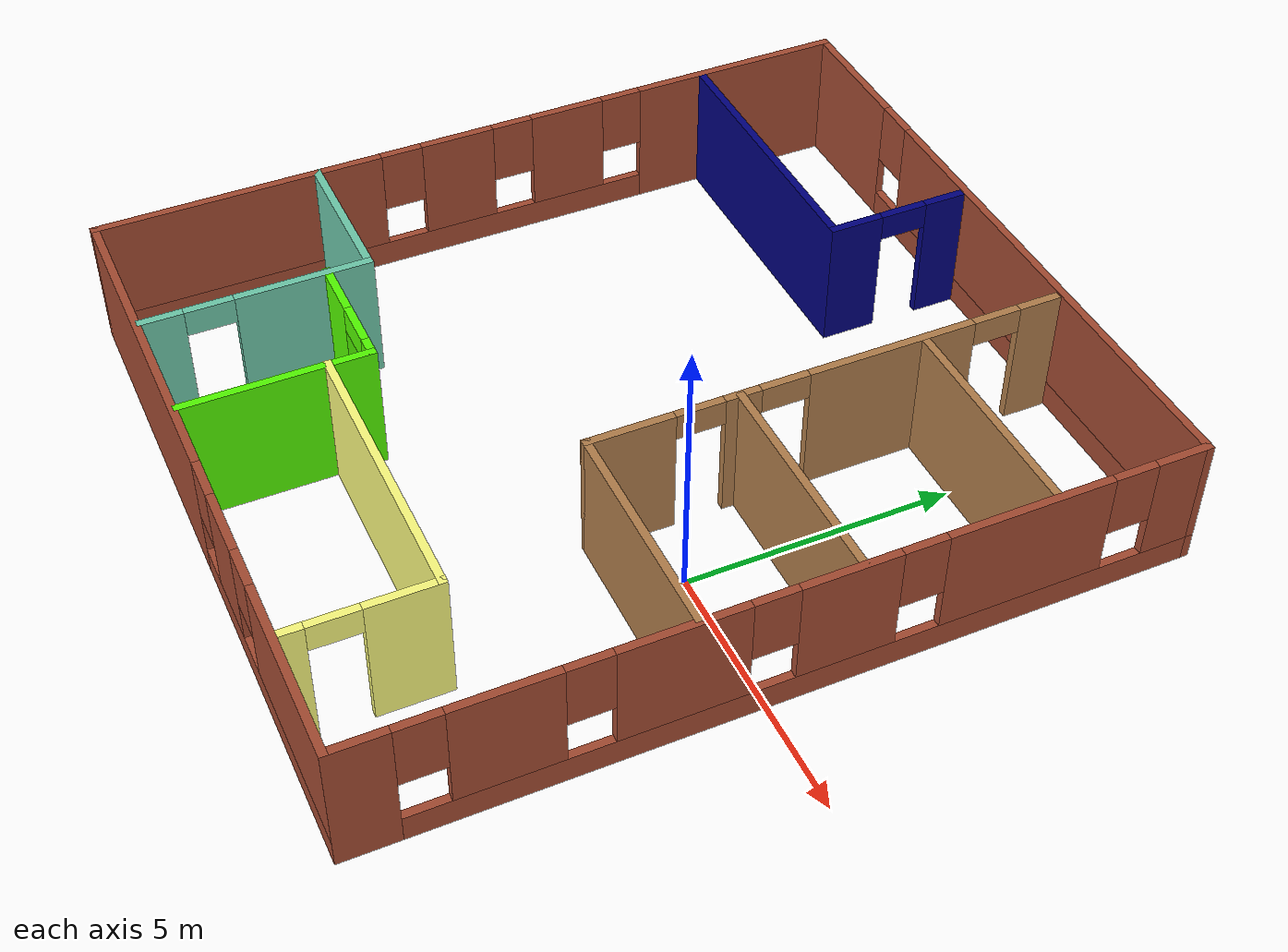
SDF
<?xml version='1.0'?>
<sdf version='1.6'>
  <model name='Building'>
    <pose frame=''>-3.58971 0.432221 0 0 -0 0</pose>
    <link name='Wall_41'>
      <pose frame=''>-6.425 0 0 0 0 -1.5708</pose>
      <visual name='Wall_41_Visual_0'>
        <pose frame=''>-5.408 0 1.25 0 -0 0</pose>
        <geometry>
          <box>
            <size>4.184 0.15 2.5</size>
          </box>
        </geometry>
        <material>
          <script>
            <uri>file://media/materials/scripts/gazebo.material</uri>
            <name>Gazebo/Bricks</name>
          </script>
          <ambient>1 1 1 1</ambient>
        </material>
        <meta>
          <layer>0</layer>
        </meta>
      </visual>
      <collision name='Wall_41_Collision_0'>
        <geometry>
          <box>
            <size>4.184 0.15 2.5</size>
          </box>
        </geometry>
        <pose frame=''>-5.408 0 1.25 0 -0 0</pose>
      </collision>
      <visual name='Wall_41_Visual_1'>
        <pose frame=''>2.092 0 0.25 0 -0 0</pose>
        <geometry>
          <box>
            <size>10.816 0.15 0.5</size>
          </box>
        </geometry>
        <material>
          <script>
            <uri>file://media/materials/scripts/gazebo.material</uri>
            <name>Gazebo/Bricks</name>
          </script>
          <ambient>1 1 1 1</ambient>
        </material>
        <meta>
          <layer>0</layer>
        </meta>
      </visual>
      <collision name='Wall_41_Collision_1'>
        <geometry>
          <box>
            <size>10.816 0.15 0.5</size>
          </box>
        </geometry>
        <pose frame=''>2.092 0 0.25 0 -0 0</pose>
      </collision>
      <visual name='Wall_41_Visual_2'>
        <pose frame=''>-1.77682 0 1.5 0 -0 0</pose>
        <geometry>
          <box>
            <size>1.47838 0.15 2</size>
          </box>
        </geometry>
        <material>
          <script>
            <uri>file://media/materials/scripts/gazebo.material</uri>
            <name>Gazebo/Bricks</name>
          </script>
          <ambient>1 1 1 1</ambient>
        </material>
        <meta>
          <layer>0</layer>
        </meta>
      </visual>
      <collision name='Wall_41_Collision_2'>
        <geometry>
          <box>
            <size>1.47838 0.15 2</size>
          </box>
        </geometry>
        <pose frame=''>-1.77682 0 1.5 0 -0 0</pose>
      </collision>
      <visual name='Wall_41_Visual_3'>
        <pose frame=''>0.481218 0 1.5 0 -0 0</pose>
        <geometry>
          <box>
            <size>1.43769 0.15 2</size>
          </box>
        </geometry>
        <material>
          <script>
            <uri>file://media/materials/scripts/gazebo.material</uri>
            <name>Gazebo/Bricks</name>
          </script>
          <ambient>1 1 1 1</ambient>
        </material>
        <meta>
          <layer>0</layer>
        </meta>
      </visual>
      <collision name='Wall_41_Collision_3'>
        <geometry>
          <box>
            <size>1.43769 0.15 2</size>
          </box>
        </geometry>
        <pose frame=''>0.481218 0 1.5 0 -0 0</pose>
      </collision>
      <visual name='Wall_41_Visual_4'>
        <pose frame=''>4.75003 0 1.5 0 -0 0</pose>
        <geometry>
          <box>
            <size>5.49994 0.15 2</size>
          </box>
        </geometry>
        <material>
          <script>
            <uri>file://media/materials/scripts/gazebo.material</uri>
            <name>Gazebo/Bricks</name>
          </script>
          <ambient>1 1 1 1</ambient>
        </material>
        <meta>
          <layer>0</layer>
        </meta>
      </visual>
      <collision name='Wall_41_Collision_4'>
        <geometry>
          <box>
            <size>5.49994 0.15 2</size>
          </box>
        </geometry>
        <pose frame=''>4.75003 0 1.5 0 -0 0</pose>
      </collision>
      <visual name='Wall_41_Visual_5'>
        <pose frame=''>-2.91601 0 1.9 0 -0 0</pose>
        <geometry>
          <box>
            <size>0.8 0.15 1.2</size>
          </box>
        </geometry>
        <material>
          <script>
            <uri>file://media/materials/scripts/gazebo.material</uri>
            <name>Gazebo/Bricks</name>
          </script>
          <ambient>1 1 1 1</ambient>
        </material>
        <meta>
          <layer>0</layer>
        </meta>
      </visual>
      <collision name='Wall_41_Collision_5'>
        <geometry>
          <box>
            <size>0.8 0.15 1.2</size>
          </box>
        </geometry>
        <pose frame=''>-2.91601 0 1.9 0 -0 0</pose>
      </collision>
      <visual name='Wall_41_Visual_6'>
        <pose frame=''>-0.637628 0 1.9 0 -0 0</pose>
        <geometry>
          <box>
            <size>0.8 0.15 1.2</size>
          </box>
        </geometry>
        <material>
          <script>
            <uri>file://media/materials/scripts/gazebo.material</uri>
            <name>Gazebo/Bricks</name>
          </script>
          <ambient>1 1 1 1</ambient>
        </material>
        <meta>
          <layer>0</layer>
        </meta>
      </visual>
      <collision name='Wall_41_Collision_6'>
        <geometry>
          <box>
            <size>0.8 0.15 1.2</size>
          </box>
        </geometry>
        <pose frame=''>-0.637628 0 1.9 0 -0 0</pose>
      </collision>
      <visual name='Wall_41_Visual_7'>
        <pose frame=''>1.60006 0 1.9 0 -0 0</pose>
        <geometry>
          <box>
            <size>0.8 0.15 1.2</size>
          </box>
        </geometry>
        <material>
          <script>
            <uri>file://media/materials/scripts/gazebo.material</uri>
            <name>Gazebo/Bricks</name>
          </script>
          <ambient>1 1 1 1</ambient>
        </material>
        <meta>
          <layer>0</layer>
        </meta>
      </visual>
      <collision name='Wall_41_Collision_7'>
        <geometry>
          <box>
            <size>0.8 0.15 1.2</size>
          </box>
        </geometry>
        <pose frame=''>1.60006 0 1.9 0 -0 0</pose>
      </collision>
    </link>
    <link name='Wall_43'>
      <pose frame=''>0 -7.425 0 0 -0 0</pose>
      <visual name='Wall_43_Visual_0'>
        <pose frame=''>-3.20066 0 1.25 0 -0 0</pose>
        <geometry>
          <box>
            <size>6.59868 0.15 2.5</size>
          </box>
        </geometry>
        <material>
          <script>
            <uri>file://media/materials/scripts/gazebo.material</uri>
            <name>Gazebo/Bricks</name>
          </script>
          <ambient>1 1 1 1</ambient>
        </material>
        <meta>
          <layer>0</layer>
        </meta>
      </visual>
      <collision name='Wall_43_Collision_0'>
        <geometry>
          <box>
            <size>6.59868 0.15 2.5</size>
          </box>
        </geometry>
        <pose frame=''>-3.20066 0 1.25 0 -0 0</pose>
      </collision>
      <visual name='Wall_43_Visual_1'>
        <pose frame=''>3.29934 0 0.25 0 -0 0</pose>
        <geometry>
          <box>
            <size>6.40132 0.15 0.5</size>
          </box>
        </geometry>
        <material>
          <script>
            <uri>file://media/materials/scripts/gazebo.material</uri>
            <name>Gazebo/Bricks</name>
          </script>
          <ambient>1 1 1 1</ambient>
        </material>
        <meta>
          <layer>0</layer>
        </meta>
      </visual>
      <collision name='Wall_43_Collision_1'>
        <geometry>
          <box>
            <size>6.40132 0.15 0.5</size>
          </box>
        </geometry>
        <pose frame=''>3.29934 0 0.25 0 -0 0</pose>
      </collision>
      <visual name='Wall_43_Visual_2'>
        <pose frame=''>1.54465 0 1.5 0 -0 0</pose>
        <geometry>
          <box>
            <size>1.29195 0.15 2</size>
          </box>
        </geometry>
        <material>
          <script>
            <uri>file://media/materials/scripts/gazebo.material</uri>
            <name>Gazebo/Bricks</name>
          </script>
          <ambient>1 1 1 1</ambient>
        </material>
        <meta>
          <layer>0</layer>
        </meta>
      </visual>
      <collision name='Wall_43_Collision_2'>
        <geometry>
          <box>
            <size>1.29195 0.15 2</size>
          </box>
        </geometry>
        <pose frame=''>1.54465 0 1.5 0 -0 0</pose>
      </collision>
      <visual name='Wall_43_Visual_3'>
        <pose frame=''>4.74531 0 1.5 0 -0 0</pose>
        <geometry>
          <box>
            <size>3.50937 0.15 2</size>
          </box>
        </geometry>
        <material>
          <script>
            <uri>file://media/materials/scripts/gazebo.material</uri>
            <name>Gazebo/Bricks</name>
          </script>
          <ambient>1 1 1 1</ambient>
        </material>
        <meta>
          <layer>0</layer>
        </meta>
      </visual>
      <collision name='Wall_43_Collision_3'>
        <geometry>
          <box>
            <size>3.50937 0.15 2</size>
          </box>
        </geometry>
        <pose frame=''>4.74531 0 1.5 0 -0 0</pose>
      </collision>
      <visual name='Wall_43_Visual_4'>
        <pose frame=''>0.498678 0 1.9 0 -0 0</pose>
        <geometry>
          <box>
            <size>0.8 0.15 1.2</size>
          </box>
        </geometry>
        <material>
          <script>
            <uri>file://media/materials/scripts/gazebo.material</uri>
            <name>Gazebo/Bricks</name>
          </script>
          <ambient>1 1 1 1</ambient>
        </material>
        <meta>
          <layer>0</layer>
        </meta>
      </visual>
      <collision name='Wall_43_Collision_4'>
        <geometry>
          <box>
            <size>0.8 0.15 1.2</size>
          </box>
        </geometry>
        <pose frame=''>0.498678 0 1.9 0 -0 0</pose>
      </collision>
      <visual name='Wall_43_Visual_5'>
        <pose frame=''>2.59063 0 1.9 0 -0 0</pose>
        <geometry>
          <box>
            <size>0.8 0.15 1.2</size>
          </box>
        </geometry>
        <material>
          <script>
            <uri>file://media/materials/scripts/gazebo.material</uri>
            <name>Gazebo/Bricks</name>
          </script>
          <ambient>1 1 1 1</ambient>
        </material>
        <meta>
          <layer>0</layer>
        </meta>
      </visual>
      <collision name='Wall_43_Collision_5'>
        <geometry>
          <box>
            <size>0.8 0.15 1.2</size>
          </box>
        </geometry>
        <pose frame=''>2.59063 0 1.9 0 -0 0</pose>
      </collision>
    </link>
    <link name='Wall_44'>
      <pose frame=''>6.425 0 0 0 -0 1.5708</pose>
      <visual name='Wall_44_Visual_0'>
        <pose frame=''>-6.96314 0 1.25 0 -0 0</pose>
        <geometry>
          <box>
            <size>1.07371 0.15 2.5</size>
          </box>
        </geometry>
        <material>
          <script>
            <uri>file://media/materials/scripts/gazebo.material</uri>
            <name>Gazebo/Bricks</name>
          </script>
          <ambient>1 1 1 1</ambient>
        </material>
        <meta>
          <layer>0</layer>
        </meta>
      </visual>
      <collision name='Wall_44_Collision_0'>
        <geometry>
          <box>
            <size>1.07371 0.15 2.5</size>
          </box>
        </geometry>
        <pose frame=''>-6.96314 0 1.25 0 -0 0</pose>
      </collision>
      <visual name='Wall_44_Visual_1'>
        <pose frame=''>0.536855 0 0.25 0 -0 0</pose>
        <geometry>
          <box>
            <size>13.9263 0.15 0.5</size>
          </box>
        </geometry>
        <material>
          <script>
            <uri>file://media/materials/scripts/gazebo.material</uri>
            <name>Gazebo/Bricks</name>
          </script>
          <ambient>1 1 1 1</ambient>
        </material>
        <meta>
          <layer>0</layer>
        </meta>
      </visual>
      <collision name='Wall_44_Collision_1'>
        <geometry>
          <box>
            <size>13.9263 0.15 0.5</size>
          </box>
        </geometry>
        <pose frame=''>0.536855 0 0.25 0 -0 0</pose>
      </collision>
      <visual name='Wall_44_Visual_2'>
        <pose frame=''>-4.70344 0 1.5 0 -0 0</pose>
        <geometry>
          <box>
            <size>1.8457 0.15 2</size>
          </box>
        </geometry>
        <material>
          <script>
            <uri>file://media/materials/scripts/gazebo.material</uri>
            <name>Gazebo/Bricks</name>
          </script>
          <ambient>1 1 1 1</ambient>
        </material>
        <meta>
          <layer>0</layer>
        </meta>
      </visual>
      <collision name='Wall_44_Collision_2'>
        <geometry>
          <box>
            <size>1.8457 0.15 2</size>
          </box>
        </geometry>
        <pose frame=''>-4.70344 0 1.5 0 -0 0</pose>
      </collision>
      <visual name='Wall_44_Visual_3'>
        <pose frame=''>-1.85971 0 1.5 0 -0 0</pose>
        <geometry>
          <box>
            <size>2.24177 0.15 2</size>
          </box>
        </geometry>
        <material>
          <script>
            <uri>file://media/materials/scripts/gazebo.material</uri>
            <name>Gazebo/Bricks</name>
          </script>
          <ambient>1 1 1 1</ambient>
        </material>
        <meta>
          <layer>0</layer>
        </meta>
      </visual>
      <collision name='Wall_44_Collision_3'>
        <geometry>
          <box>
            <size>2.24177 0.15 2</size>
          </box>
        </geometry>
        <pose frame=''>-1.85971 0 1.5 0 -0 0</pose>
      </collision>
      <visual name='Wall_44_Visual_4'>
        <pose frame=''>0.942768 0 1.5 0 -0 0</pose>
        <geometry>
          <box>
            <size>1.76317 0.15 2</size>
          </box>
        </geometry>
        <material>
          <script>
            <uri>file://media/materials/scripts/gazebo.material</uri>
            <name>Gazebo/Bricks</name>
          </script>
          <ambient>1 1 1 1</ambient>
        </material>
        <meta>
          <layer>0</layer>
        </meta>
      </visual>
      <collision name='Wall_44_Collision_4'>
        <geometry>
          <box>
            <size>1.76317 0.15 2</size>
          </box>
        </geometry>
        <pose frame=''>0.942768 0 1.5 0 -0 0</pose>
      </collision>
      <visual name='Wall_44_Visual_5'>
        <pose frame=''>4.13656 0 1.5 0 -0 0</pose>
        <geometry>
          <box>
            <size>3.02442 0.15 2</size>
          </box>
        </geometry>
        <material>
          <script>
            <uri>file://media/materials/scripts/gazebo.material</uri>
            <name>Gazebo/Bricks</name>
          </script>
          <ambient>1 1 1 1</ambient>
        </material>
        <meta>
          <layer>0</layer>
        </meta>
      </visual>
      <collision name='Wall_44_Collision_5'>
        <geometry>
          <box>
            <size>3.02442 0.15 2</size>
          </box>
        </geometry>
        <pose frame=''>4.13656 0 1.5 0 -0 0</pose>
      </collision>
      <visual name='Wall_44_Visual_6'>
        <pose frame=''>6.97439 0 1.5 0 -0 0</pose>
        <geometry>
          <box>
            <size>1.05123 0.15 2</size>
          </box>
        </geometry>
        <material>
          <script>
            <uri>file://media/materials/scripts/gazebo.material</uri>
            <name>Gazebo/Bricks</name>
          </script>
          <ambient>1 1 1 1</ambient>
        </material>
        <meta>
          <layer>0</layer>
        </meta>
      </visual>
      <collision name='Wall_44_Collision_6'>
        <geometry>
          <box>
            <size>1.05123 0.15 2</size>
          </box>
        </geometry>
        <pose frame=''>6.97439 0 1.5 0 -0 0</pose>
      </collision>
      <visual name='Wall_44_Visual_7'>
        <pose frame=''>-6.02629 0 1.9 0 -0 0</pose>
        <geometry>
          <box>
            <size>0.8 0.15 1.2</size>
          </box>
        </geometry>
        <material>
          <script>
            <uri>file://media/materials/scripts/gazebo.material</uri>
            <name>Gazebo/Bricks</name>
          </script>
          <ambient>1 1 1 1</ambient>
        </material>
        <meta>
          <layer>0</layer>
        </meta>
      </visual>
      <collision name='Wall_44_Collision_7'>
        <geometry>
          <box>
            <size>0.8 0.15 1.2</size>
          </box>
        </geometry>
        <pose frame=''>-6.02629 0 1.9 0 -0 0</pose>
      </collision>
      <visual name='Wall_44_Visual_8'>
        <pose frame=''>-3.38059 0 1.9 0 -0 0</pose>
        <geometry>
          <box>
            <size>0.8 0.15 1.2</size>
          </box>
        </geometry>
        <material>
          <script>
            <uri>file://media/materials/scripts/gazebo.material</uri>
            <name>Gazebo/Bricks</name>
          </script>
          <ambient>1 1 1 1</ambient>
        </material>
        <meta>
          <layer>0</layer>
        </meta>
      </visual>
      <collision name='Wall_44_Collision_8'>
        <geometry>
          <box>
            <size>0.8 0.15 1.2</size>
          </box>
        </geometry>
        <pose frame=''>-3.38059 0 1.9 0 -0 0</pose>
      </collision>
      <visual name='Wall_44_Visual_9'>
        <pose frame=''>-0.338819 0 1.9 0 -0 0</pose>
        <geometry>
          <box>
            <size>0.8 0.15 1.2</size>
          </box>
        </geometry>
        <material>
          <script>
            <uri>file://media/materials/scripts/gazebo.material</uri>
            <name>Gazebo/Bricks</name>
          </script>
          <ambient>1 1 1 1</ambient>
        </material>
        <meta>
          <layer>0</layer>
        </meta>
      </visual>
      <collision name='Wall_44_Collision_9'>
        <geometry>
          <box>
            <size>0.8 0.15 1.2</size>
          </box>
        </geometry>
        <pose frame=''>-0.338819 0 1.9 0 -0 0</pose>
      </collision>
      <visual name='Wall_44_Visual_10'>
        <pose frame=''>2.22436 0 1.9 0 -0 0</pose>
        <geometry>
          <box>
            <size>0.8 0.15 1.2</size>
          </box>
        </geometry>
        <material>
          <script>
            <uri>file://media/materials/scripts/gazebo.material</uri>
            <name>Gazebo/Bricks</name>
          </script>
          <ambient>1 1 1 1</ambient>
        </material>
        <meta>
          <layer>0</layer>
        </meta>
      </visual>
      <collision name='Wall_44_Collision_10'>
        <geometry>
          <box>
            <size>0.8 0.15 1.2</size>
          </box>
        </geometry>
        <pose frame=''>2.22436 0 1.9 0 -0 0</pose>
      </collision>
      <visual name='Wall_44_Visual_11'>
        <pose frame=''>6.04877 0 1.9 0 -0 0</pose>
        <geometry>
          <box>
            <size>0.8 0.15 1.2</size>
          </box>
        </geometry>
        <material>
          <script>
            <uri>file://media/materials/scripts/gazebo.material</uri>
            <name>Gazebo/Bricks</name>
          </script>
          <ambient>1 1 1 1</ambient>
        </material>
        <meta>
          <layer>0</layer>
        </meta>
      </visual>
      <collision name='Wall_44_Collision_11'>
        <geometry>
          <box>
            <size>0.8 0.15 1.2</size>
          </box>
        </geometry>
        <pose frame=''>6.04877 0 1.9 0 -0 0</pose>
      </collision>
    </link>
    <link name='Wall_46'>
      <pose frame=''>0 7.425 0 0 -0 0</pose>
      <visual name='Wall_46_Visual_0'>
        <pose frame=''>-5.19489 0 1.25 0 -0 0</pose>
        <geometry>
          <box>
            <size>2.61021 0.15 2.5</size>
          </box>
        </geometry>
        <material>
          <script>
            <uri>file://media/materials/scripts/gazebo.material</uri>
            <name>Gazebo/Bricks</name>
          </script>
          <ambient>1 1 1 1</ambient>
        </material>
        <meta>
          <layer>0</layer>
        </meta>
      </visual>
      <collision name='Wall_46_Collision_0'>
        <geometry>
          <box>
            <size>2.61021 0.15 2.5</size>
          </box>
        </geometry>
        <pose frame=''>-5.19489 0 1.25 0 -0 0</pose>
      </collision>
      <visual name='Wall_46_Visual_1'>
        <pose frame=''>1.30511 0 0.25 0 -0 0</pose>
        <geometry>
          <box>
            <size>10.3898 0.15 0.5</size>
          </box>
        </geometry>
        <material>
          <script>
            <uri>file://media/materials/scripts/gazebo.material</uri>
            <name>Gazebo/Bricks</name>
          </script>
          <ambient>1 1 1 1</ambient>
        </material>
        <meta>
          <layer>0</layer>
        </meta>
      </visual>
      <collision name='Wall_46_Collision_1'>
        <geometry>
          <box>
            <size>10.3898 0.15 0.5</size>
          </box>
        </geometry>
        <pose frame=''>1.30511 0 0.25 0 -0 0</pose>
      </collision>
      <visual name='Wall_46_Visual_2'>
        <pose frame=''>1.70511 0 1.5 0 -0 0</pose>
        <geometry>
          <box>
            <size>9.58979 0.15 2</size>
          </box>
        </geometry>
        <material>
          <script>
            <uri>file://media/materials/scripts/gazebo.material</uri>
            <name>Gazebo/Bricks</name>
          </script>
          <ambient>1 1 1 1</ambient>
        </material>
        <meta>
          <layer>0</layer>
        </meta>
      </visual>
      <collision name='Wall_46_Collision_2'>
        <geometry>
          <box>
            <size>9.58979 0.15 2</size>
          </box>
        </geometry>
        <pose frame=''>1.70511 0 1.5 0 -0 0</pose>
      </collision>
      <visual name='Wall_46_Visual_3'>
        <pose frame=''>-3.48979 0 1.9 0 -0 0</pose>
        <geometry>
          <box>
            <size>0.8 0.15 1.2</size>
          </box>
        </geometry>
        <material>
          <script>
            <uri>file://media/materials/scripts/gazebo.material</uri>
            <name>Gazebo/Bricks</name>
          </script>
          <ambient>1 1 1 1</ambient>
        </material>
        <meta>
          <layer>0</layer>
        </meta>
      </visual>
      <collision name='Wall_46_Collision_3'>
        <geometry>
          <box>
            <size>0.8 0.15 1.2</size>
          </box>
        </geometry>
        <pose frame=''>-3.48979 0 1.9 0 -0 0</pose>
      </collision>
    </link>
    <link name='Wall_48'>
      <collision name='Wall_48_Collision'>
        <geometry>
          <box>
            <size>3 0.15 2.5</size>
          </box>
        </geometry>
        <pose frame=''>0 0 1.25 0 -0 0</pose>
      </collision>
      <visual name='Wall_48_Visual'>
        <pose frame=''>0 0 1.25 0 -0 0</pose>
        <geometry>
          <box>
            <size>3 0.15 2.5</size>
          </box>
        </geometry>
        <material>
          <script>
            <uri>file://media/materials/scripts/gazebo.material</uri>
            <name>Gazebo/Grey</name>
          </script>
          <ambient>0.435294 0.796078 0.67451 1</ambient>
        </material>
        <meta>
          <layer>0</layer>
        </meta>
      </visual>
      <pose frame=''>-4.99747 -3.23888 0 0 -0 0</pose>
    </link>
    <link name='Wall_51'>
      <pose frame=''>-3.57247 -5.28888 0 0 0 -1.5708</pose>
      <visual name='Wall_51_Visual_0'>
        <pose frame=''>-0.857267 0 1.25 0 -0 0</pose>
        <geometry>
          <box>
            <size>2.53547 0.15 2.5</size>
          </box>
        </geometry>
        <material>
          <script>
            <uri>file://media/materials/scripts/gazebo.material</uri>
            <name>Gazebo/Grey</name>
          </script>
          <ambient>0.435294 0.796078 0.67451 1</ambient>
        </material>
        <meta>
          <layer>0</layer>
        </meta>
      </visual>
      <collision name='Wall_51_Collision_0'>
        <geometry>
          <box>
            <size>2.53547 0.15 2.5</size>
          </box>
        </geometry>
        <pose frame=''>-0.857267 0 1.25 0 -0 0</pose>
      </collision>
      <visual name='Wall_51_Visual_1'>
        <pose frame=''>1.71773 0 1.25 0 -0 0</pose>
        <geometry>
          <box>
            <size>0.814534 0.15 2.5</size>
          </box>
        </geometry>
        <material>
          <script>
            <uri>file://media/materials/scripts/gazebo.material</uri>
            <name>Gazebo/Grey</name>
          </script>
          <ambient>0.435294 0.796078 0.67451 1</ambient>
        </material>
        <meta>
          <layer>0</layer>
        </meta>
      </visual>
      <collision name='Wall_51_Collision_1'>
        <geometry>
          <box>
            <size>0.814534 0.15 2.5</size>
          </box>
        </geometry>
        <pose frame=''>1.71773 0 1.25 0 -0 0</pose>
      </collision>
      <visual name='Wall_51_Visual_2'>
        <pose frame=''>0.860466 0 2.25 0 -0 0</pose>
        <geometry>
          <box>
            <size>0.9 0.15 0.5</size>
          </box>
        </geometry>
        <material>
          <script>
            <uri>file://media/materials/scripts/gazebo.material</uri>
            <name>Gazebo/Grey</name>
          </script>
          <ambient>0.435294 0.796078 0.67451 1</ambient>
        </material>
        <meta>
          <layer>0</layer>
        </meta>
      </visual>
      <collision name='Wall_51_Collision_2'>
        <geometry>
          <box>
            <size>0.9 0.15 0.5</size>
          </box>
        </geometry>
        <pose frame=''>0.860466 0 2.25 0 -0 0</pose>
      </collision>
    </link>
    <link name='Wall_53'>
      <pose frame=''>-2.42594 -3.9931 0 0 -0 0</pose>
      <visual name='Wall_53_Visual_0'>
        <pose frame=''>-0.664396 0 1.25 0 -0 0</pose>
        <geometry>
          <box>
            <size>1.17121 0.15 2.5</size>
          </box>
        </geometry>
        <material>
          <script>
            <uri>file://media/materials/scripts/gazebo.material</uri>
            <name>Gazebo/Grey</name>
          </script>
          <ambient>0.333333 1 0 1</ambient>
        </material>
        <meta>
          <layer>0</layer>
        </meta>
      </visual>
      <collision name='Wall_53_Collision_0'>
        <geometry>
          <box>
            <size>1.17121 0.15 2.5</size>
          </box>
        </geometry>
        <pose frame=''>-0.664396 0 1.25 0 -0 0</pose>
      </collision>
      <visual name='Wall_53_Visual_1'>
        <pose frame=''>1.0356 0 1.25 0 -0 0</pose>
        <geometry>
          <box>
            <size>0.428792 0.15 2.5</size>
          </box>
        </geometry>
        <material>
          <script>
            <uri>file://media/materials/scripts/gazebo.material</uri>
            <name>Gazebo/Grey</name>
          </script>
          <ambient>0.333333 1 0 1</ambient>
        </material>
        <meta>
          <layer>0</layer>
        </meta>
      </visual>
      <collision name='Wall_53_Collision_1'>
        <geometry>
          <box>
            <size>0.428792 0.15 2.5</size>
          </box>
        </geometry>
        <pose frame=''>1.0356 0 1.25 0 -0 0</pose>
      </collision>
      <visual name='Wall_53_Visual_2'>
        <pose frame=''>0.371208 0 2.25 0 -0 0</pose>
        <geometry>
          <box>
            <size>0.9 0.15 0.5</size>
          </box>
        </geometry>
        <material>
          <script>
            <uri>file://media/materials/scripts/gazebo.material</uri>
            <name>Gazebo/Grey</name>
          </script>
          <ambient>0.333333 1 0 1</ambient>
        </material>
        <meta>
          <layer>0</layer>
        </meta>
      </visual>
      <collision name='Wall_53_Collision_2'>
        <geometry>
          <box>
            <size>0.9 0.15 0.5</size>
          </box>
        </geometry>
        <pose frame=''>0.371208 0 2.25 0 -0 0</pose>
      </collision>
    </link>
    <link name='Wall_54'>
      <collision name='Wall_54_Collision'>
        <geometry>
          <box>
            <size>3.5 0.15 2.5</size>
          </box>
        </geometry>
        <pose frame=''>0 0 1.25 0 -0 0</pose>
      </collision>
      <visual name='Wall_54_Visual'>
        <pose frame=''>0 0 1.25 0 -0 0</pose>
        <geometry>
          <box>
            <size>3.5 0.15 2.5</size>
          </box>
        </geometry>
        <material>
          <script>
            <uri>file://media/materials/scripts/gazebo.material</uri>
            <name>Gazebo/Grey</name>
          </script>
          <ambient>0.333333 1 0 1</ambient>
        </material>
        <meta>
          <layer>0</layer>
        </meta>
      </visual>
      <pose frame=''>-1.25094 -5.6681 0 0 0 -1.5708</pose>
    </link>
    <link name='Wall_56'>
      <collision name='Wall_56_Collision'>
        <geometry>
          <box>
            <size>5.5 0.15 2.5</size>
          </box>
        </geometry>
        <pose frame=''>0 0 1.25 0 -0 0</pose>
      </collision>
      <visual name='Wall_56_Visual'>
        <pose frame=''>0 0 1.25 0 -0 0</pose>
        <geometry>
          <box>
            <size>5.5 0.15 2.5</size>
          </box>
        </geometry>
        <material>
          <script>
            <uri>file://media/materials/scripts/gazebo.material</uri>
            <name>Gazebo/Grey</name>
          </script>
          <ambient>1 1 0.498039 1</ambient>
        </material>
        <meta>
          <layer>0</layer>
        </meta>
      </visual>
      <pose frame=''>1.41212 -4.7622 0 0 -0 0</pose>
    </link>
    <link name='Wall_57'>
      <pose frame=''>4.08712 -6.0622 0 0 0 -1.5708</pose>
      <visual name='Wall_57_Visual_0'>
        <pose frame=''>-0.699724 0 1.25 0 -0 0</pose>
        <geometry>
          <box>
            <size>1.35055 0.15 2.5</size>
          </box>
        </geometry>
        <material>
          <script>
            <uri>file://media/materials/scripts/gazebo.material</uri>
            <name>Gazebo/Grey</name>
          </script>
          <ambient>1 1 0.498039 1</ambient>
        </material>
        <meta>
          <layer>0</layer>
        </meta>
      </visual>
      <collision name='Wall_57_Collision_0'>
        <geometry>
          <box>
            <size>1.35055 0.15 2.5</size>
          </box>
        </geometry>
        <pose frame=''>-0.699724 0 1.25 0 -0 0</pose>
      </collision>
      <visual name='Wall_57_Visual_1'>
        <pose frame=''>1.12528 0 1.25 0 -0 0</pose>
        <geometry>
          <box>
            <size>0.499448 0.15 2.5</size>
          </box>
        </geometry>
        <material>
          <script>
            <uri>file://media/materials/scripts/gazebo.material</uri>
            <name>Gazebo/Grey</name>
          </script>
          <ambient>1 1 0.498039 1</ambient>
        </material>
        <meta>
          <layer>0</layer>
        </meta>
      </visual>
      <collision name='Wall_57_Collision_1'>
        <geometry>
          <box>
            <size>0.499448 0.15 2.5</size>
          </box>
        </geometry>
        <pose frame=''>1.12528 0 1.25 0 -0 0</pose>
      </collision>
      <visual name='Wall_57_Visual_2'>
        <pose frame=''>0.425552 0 2.25 0 -0 0</pose>
        <geometry>
          <box>
            <size>0.9 0.15 0.5</size>
          </box>
        </geometry>
        <material>
          <script>
            <uri>file://media/materials/scripts/gazebo.material</uri>
            <name>Gazebo/Grey</name>
          </script>
          <ambient>1 1 0.498039 1</ambient>
        </material>
        <meta>
          <layer>0</layer>
        </meta>
      </visual>
      <collision name='Wall_57_Collision_2'>
        <geometry>
          <box>
            <size>0.9 0.15 0.5</size>
          </box>
        </geometry>
        <pose frame=''>0.425552 0 2.25 0 -0 0</pose>
      </collision>
    </link>
    <link name='Wall_59'>
      <pose frame=''>2.24493 2.82908 0 0 0 -1.5708</pose>
      <visual name='Wall_59_Visual_0'>
        <pose frame=''>-4.09249 0 1.25 0 -0 0</pose>
        <geometry>
          <box>
            <size>0.815026 0.15 2.5</size>
          </box>
        </geometry>
        <material>
          <script>
            <uri>file://media/materials/scripts/gazebo.material</uri>
            <name>Gazebo/Wood</name>
          </script>
          <ambient>1 1 1 1</ambient>
        </material>
        <meta>
          <layer>0</layer>
        </meta>
      </visual>
      <collision name='Wall_59_Collision_0'>
        <geometry>
          <box>
            <size>0.815026 0.15 2.5</size>
          </box>
        </geometry>
        <pose frame=''>-4.09249 0 1.25 0 -0 0</pose>
      </collision>
      <visual name='Wall_59_Visual_1'>
        <pose frame=''>-1.19717 0 1.25 0 -0 0</pose>
        <geometry>
          <box>
            <size>3.1756 0.15 2.5</size>
          </box>
        </geometry>
        <material>
          <script>
            <uri>file://media/materials/scripts/gazebo.material</uri>
            <name>Gazebo/Wood</name>
          </script>
          <ambient>1 1 1 1</ambient>
        </material>
        <meta>
          <layer>0</layer>
        </meta>
      </visual>
      <collision name='Wall_59_Collision_1'>
        <geometry>
          <box>
            <size>3.1756 0.15 2.5</size>
          </box>
        </geometry>
        <pose frame=''>-1.19717 0 1.25 0 -0 0</pose>
      </collision>
      <visual name='Wall_59_Visual_2'>
        <pose frame=''>1.62335 0 1.25 0 -0 0</pose>
        <geometry>
          <box>
            <size>0.665455 0.15 2.5</size>
          </box>
        </geometry>
        <material>
          <script>
            <uri>file://media/materials/scripts/gazebo.material</uri>
            <name>Gazebo/Wood</name>
          </script>
          <ambient>1 1 1 1</ambient>
        </material>
        <meta>
          <layer>0</layer>
        </meta>
      </visual>
      <collision name='Wall_59_Collision_2'>
        <geometry>
          <box>
            <size>0.665455 0.15 2.5</size>
          </box>
        </geometry>
        <pose frame=''>1.62335 0 1.25 0 -0 0</pose>
      </collision>
      <visual name='Wall_59_Visual_3'>
        <pose frame=''>3.67804 0 1.25 0 -0 0</pose>
        <geometry>
          <box>
            <size>1.64392 0.15 2.5</size>
          </box>
        </geometry>
        <material>
          <script>
            <uri>file://media/materials/scripts/gazebo.material</uri>
            <name>Gazebo/Wood</name>
          </script>
          <ambient>1 1 1 1</ambient>
        </material>
        <meta>
          <layer>0</layer>
        </meta>
      </visual>
      <collision name='Wall_59_Collision_3'>
        <geometry>
          <box>
            <size>1.64392 0.15 2.5</size>
          </box>
        </geometry>
        <pose frame=''>3.67804 0 1.25 0 -0 0</pose>
      </collision>
      <visual name='Wall_59_Visual_4'>
        <pose frame=''>-3.23497 0 2.25 0 -0 0</pose>
        <geometry>
          <box>
            <size>0.9 0.15 0.5</size>
          </box>
        </geometry>
        <material>
          <script>
            <uri>file://media/materials/scripts/gazebo.material</uri>
            <name>Gazebo/Wood</name>
          </script>
          <ambient>1 1 1 1</ambient>
        </material>
        <meta>
          <layer>0</layer>
        </meta>
      </visual>
      <collision name='Wall_59_Collision_4'>
        <geometry>
          <box>
            <size>0.9 0.15 0.5</size>
          </box>
        </geometry>
        <pose frame=''>-3.23497 0 2.25 0 -0 0</pose>
      </collision>
      <visual name='Wall_59_Visual_5'>
        <pose frame=''>0.840626 0 2.25 0 -0 0</pose>
        <geometry>
          <box>
            <size>0.9 0.15 0.5</size>
          </box>
        </geometry>
        <material>
          <script>
            <uri>file://media/materials/scripts/gazebo.material</uri>
            <name>Gazebo/Wood</name>
          </script>
          <ambient>1 1 1 1</ambient>
        </material>
        <meta>
          <layer>0</layer>
        </meta>
      </visual>
      <collision name='Wall_59_Collision_5'>
        <geometry>
          <box>
            <size>0.9 0.15 0.5</size>
          </box>
        </geometry>
        <pose frame=''>0.840626 0 2.25 0 -0 0</pose>
      </collision>
      <visual name='Wall_59_Visual_6'>
        <pose frame=''>2.40608 0 2.25 0 -0 0</pose>
        <geometry>
          <box>
            <size>0.9 0.15 0.5</size>
          </box>
        </geometry>
        <material>
          <script>
            <uri>file://media/materials/scripts/gazebo.material</uri>
            <name>Gazebo/Wood</name>
          </script>
          <ambient>1 1 1 1</ambient>
        </material>
        <meta>
          <layer>0</layer>
        </meta>
      </visual>
      <collision name='Wall_59_Collision_6'>
        <geometry>
          <box>
            <size>0.9 0.15 0.5</size>
          </box>
        </geometry>
        <pose frame=''>2.40608 0 2.25 0 -0 0</pose>
      </collision>
    </link>
    <link name='Wall_60'>
      <collision name='Wall_60_Collision'>
        <geometry>
          <box>
            <size>4.25 0.15 2.5</size>
          </box>
        </geometry>
        <pose frame=''>0 0 1.25 0 -0 0</pose>
      </collision>
      <visual name='Wall_60_Visual'>
        <pose frame=''>0 0 1.25 0 -0 0</pose>
        <geometry>
          <box>
            <size>4.25 0.15 2.5</size>
          </box>
        </geometry>
        <material>
          <script>
            <uri>file://media/materials/scripts/gazebo.material</uri>
            <name>Gazebo/Wood</name>
          </script>
          <ambient>1 1 1 1</ambient>
        </material>
        <meta>
          <layer>0</layer>
        </meta>
      </visual>
      <pose frame=''>4.29493 -1.59592 0 0 -0 0</pose>
    </link>
    <link name='Wall_62'>
      <collision name='Wall_62_Collision'>
        <geometry>
          <box>
            <size>4.25 0.15 2.5</size>
          </box>
        </geometry>
        <pose frame=''>0 0 1.25 0 -0 0</pose>
      </collision>
      <visual name='Wall_62_Visual'>
        <pose frame=''>0 0 1.25 0 -0 0</pose>
        <geometry>
          <box>
            <size>4.25 0.15 2.5</size>
          </box>
        </geometry>
        <material>
          <script>
            <uri>file://media/materials/scripts/gazebo.material</uri>
            <name>Gazebo/Wood</name>
          </script>
          <ambient>1 1 1 1</ambient>
        </material>
        <meta>
          <layer>0</layer>
        </meta>
      </visual>
      <pose frame=''>4.29493 4.63607 0 0 -0 0</pose>
    </link>
    <link name='Wall_64'>
      <collision name='Wall_64_Collision'>
        <geometry>
          <box>
            <size>4.25 0.15 2.5</size>
          </box>
        </geometry>
        <pose frame=''>0 0 1.25 0 -0 0</pose>
      </collision>
      <visual name='Wall_64_Visual'>
        <pose frame=''>0 0 1.25 0 -0 0</pose>
        <geometry>
          <box>
            <size>4.25 0.15 2.5</size>
          </box>
        </geometry>
        <material>
          <script>
            <uri>file://media/materials/scripts/gazebo.material</uri>
            <name>Gazebo/Wood</name>
          </script>
          <ambient>1 1 1 1</ambient>
        </material>
        <meta>
          <layer>0</layer>
        </meta>
      </visual>
      <pose frame=''>4.33031 1.16897 0 0 -0 0</pose>
    </link>
    <link name='Wall_67'>
      <collision name='Wall_67_Collision'>
        <geometry>
          <box>
            <size>5.5 0.15 2.5</size>
          </box>
        </geometry>
        <pose frame=''>0 0 1.25 0 -0 0</pose>
      </collision>
      <visual name='Wall_67_Visual'>
        <pose frame=''>0 0 1.25 0 -0 0</pose>
        <geometry>
          <box>
            <size>5.5 0.15 2.5</size>
          </box>
        </geometry>
        <material>
          <script>
            <uri>file://media/materials/scripts/gazebo.material</uri>
            <name>Gazebo/Grey</name>
          </script>
          <ambient>0 0 0.498039 1</ambient>
        </material>
        <meta>
          <layer>0</layer>
        </meta>
      </visual>
      <pose frame=''>-3.64952 4.67144 0 0 -0 3.14159</pose>
    </link>
    <link name='Wall_70'>
      <pose frame=''>-0.974518 5.97144 0 0 -0 1.5708</pose>
      <visual name='Wall_70_Visual_0'>
        <pose frame=''>-0.854929 0 1.25 0 -0 0</pose>
        <geometry>
          <box>
            <size>1.04014 0.15 2.5</size>
          </box>
        </geometry>
        <material>
          <script>
            <uri>file://media/materials/scripts/gazebo.material</uri>
            <name>Gazebo/Grey</name>
          </script>
          <ambient>0 0 0.498039 1</ambient>
        </material>
        <meta>
          <layer>0</layer>
        </meta>
      </visual>
      <collision name='Wall_70_Collision_0'>
        <geometry>
          <box>
            <size>1.04014 0.15 2.5</size>
          </box>
        </geometry>
        <pose frame=''>-0.854929 0 1.25 0 -0 0</pose>
      </collision>
      <visual name='Wall_70_Visual_1'>
        <pose frame=''>0.970071 0 1.25 0 -0 0</pose>
        <geometry>
          <box>
            <size>0.809859 0.15 2.5</size>
          </box>
        </geometry>
        <material>
          <script>
            <uri>file://media/materials/scripts/gazebo.material</uri>
            <name>Gazebo/Grey</name>
          </script>
          <ambient>0 0 0.498039 1</ambient>
        </material>
        <meta>
          <layer>0</layer>
        </meta>
      </visual>
      <collision name='Wall_70_Collision_1'>
        <geometry>
          <box>
            <size>0.809859 0.15 2.5</size>
          </box>
        </geometry>
        <pose frame=''>0.970071 0 1.25 0 -0 0</pose>
      </collision>
      <visual name='Wall_70_Visual_2'>
        <pose frame=''>0.115141 0 2.25 0 -0 0</pose>
        <geometry>
          <box>
            <size>0.9 0.15 0.5</size>
          </box>
        </geometry>
        <material>
          <script>
            <uri>file://media/materials/scripts/gazebo.material</uri>
            <name>Gazebo/Grey</name>
          </script>
          <ambient>0 0 0.498039 1</ambient>
        </material>
        <meta>
          <layer>0</layer>
        </meta>
      </visual>
      <collision name='Wall_70_Collision_2'>
        <geometry>
          <box>
            <size>0.9 0.15 0.5</size>
          </box>
        </geometry>
        <pose frame=''>0.115141 0 2.25 0 -0 0</pose>
      </collision>
    </link>
    <static>1</static>
  </model>
</sdf>
